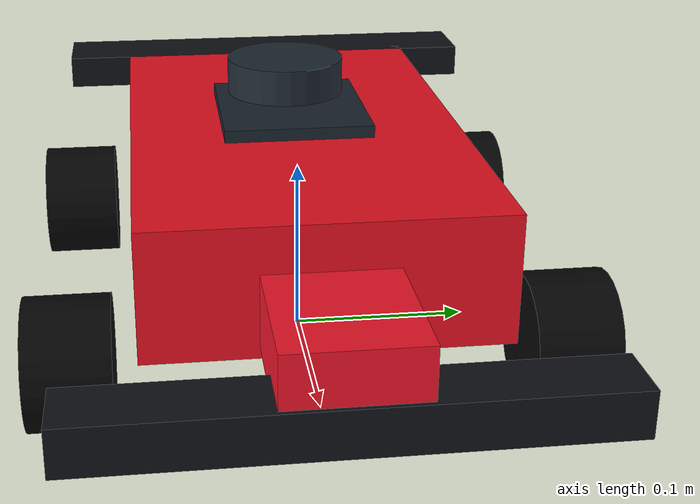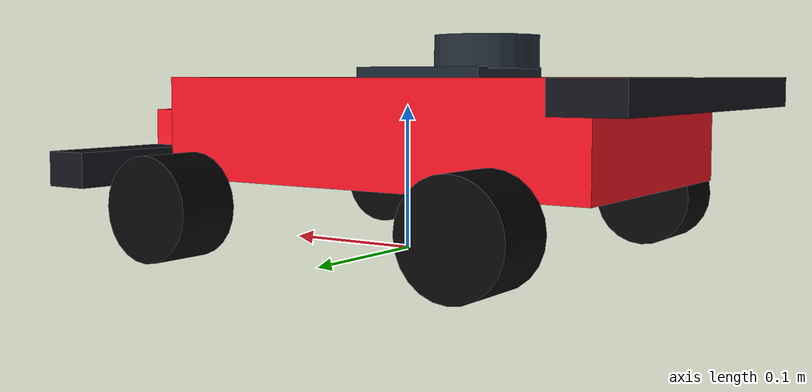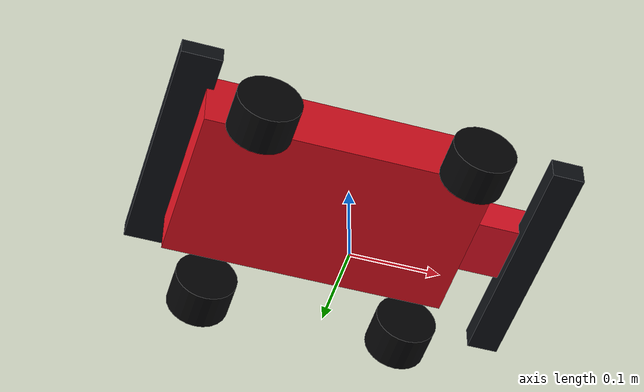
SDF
<?xml version='1.0' encoding='utf-8'?>
<sdf version="1.6">
  <!--Derived from nav2_minimal_tb3_sim/gz_waffle.sdf.xacro (Apache-2.0). Modified visual geometry only; see NOTICE.md and LICENSE.upstream.-->
  <model name="turtlebot3_waffle">
    <pose>0.0 0.0 0.0 0.0 0.0 0.0</pose>
    <link name="base_footprint" />
    <link name="base_link">
      <inertial>
        <pose>-0.064 0 0.048 0 0 0</pose>
        <inertia>
          <ixx>0.001</ixx>
          <ixy>0.000</ixy>
          <ixz>0.000</ixz>
          <iyy>0.001</iyy>
          <iyz>0.000</iyz>
          <izz>0.001</izz>
        </inertia>
        <mass>1.0</mass>
      </inertial>
      <collision name="base_collision">
        <pose>-0.064 0 0.048 0 0 0</pose>
        <geometry>
          <box>
            <size>0.265 0.265 0.089</size>
          </box>
        </geometry>
      </collision>
      <visual name="racing_body">
        <pose>-0.025 0 0.085 0 0 0</pose>
        <geometry>
          <box>
            <size>0.32 0.19 0.07</size>
          </box>
        </geometry>
        <material>
          <ambient>0.92 0.07 0.13 1</ambient>
          <diffuse>0.92 0.07 0.13 1</diffuse>
        </material>
      </visual>
      <visual name="nose">
        <pose>0.14 0 0.075 0 0 0</pose>
        <geometry>
          <box>
            <size>0.15 0.07 0.04</size>
          </box>
        </geometry>
        <material>
          <ambient>0.95 0.08 0.16 1</ambient>
          <diffuse>0.95 0.08 0.16 1</diffuse>
        </material>
      </visual>
      <visual name="front_wing">
        <pose>0.2 0 0.055 0 0 0</pose>
        <geometry>
          <box>
            <size>0.035 0.27 0.025</size>
          </box>
        </geometry>
        <material>
          <ambient>0.06 0.07 0.09 1</ambient>
          <diffuse>0.06 0.07 0.09 1</diffuse>
        </material>
      </visual>
      <visual name="rear_wing">
        <pose>-0.2 0 0.11 0 0 0</pose>
        <geometry>
          <box>
            <size>0.045 0.27 0.02</size>
          </box>
        </geometry>
        <material>
          <ambient>0.06 0.07 0.09 1</ambient>
          <diffuse>0.06 0.07 0.09 1</diffuse>
        </material>
      </visual>
      <visual name="cockpit">
        <pose>-0.035 0 0.107 0 0 0</pose>
        <geometry>
          <box>
            <size>0.095 0.085 0.04</size>
          </box>
        </geometry>
        <material>
          <ambient>0.1 0.14 0.18 1</ambient>
          <diffuse>0.1 0.14 0.18 1</diffuse>
        </material>
      </visual>
      <visual name="tyre_-0.13_-1">
        <pose>-0.13 -0.13 0.035 1.5707963267948966 0 0</pose>
        <geometry>
          <cylinder>
            <radius>0.035</radius>
            <length>0.045</length>
          </cylinder>
        </geometry>
        <material>
          <ambient>0.02 0.02 0.025 1</ambient>
          <diffuse>0.02 0.02 0.025 1</diffuse>
        </material>
      </visual>
      <visual name="tyre_-0.13_1">
        <pose>-0.13 0.13 0.035 1.5707963267948966 0 0</pose>
        <geometry>
          <cylinder>
            <radius>0.035</radius>
            <length>0.045</length>
          </cylinder>
        </geometry>
        <material>
          <ambient>0.02 0.02 0.025 1</ambient>
          <diffuse>0.02 0.02 0.025 1</diffuse>
        </material>
      </visual>
      <visual name="tyre_0.1_-1">
        <pose>0.1 -0.13 0.035 1.5707963267948966 0 0</pose>
        <geometry>
          <cylinder>
            <radius>0.035</radius>
            <length>0.045</length>
          </cylinder>
        </geometry>
        <material>
          <ambient>0.02 0.02 0.025 1</ambient>
          <diffuse>0.02 0.02 0.025 1</diffuse>
        </material>
      </visual>
      <visual name="tyre_0.1_1">
        <pose>0.1 0.13 0.035 1.5707963267948966 0 0</pose>
        <geometry>
          <cylinder>
            <radius>0.035</radius>
            <length>0.045</length>
          </cylinder>
        </geometry>
        <material>
          <ambient>0.02 0.02 0.025 1</ambient>
          <diffuse>0.02 0.02 0.025 1</diffuse>
        </material>
      </visual>
    </link>
    <link name="imu_link">
      <sensor name="tb3_imu" type="imu">
        <always_on>true</always_on>
        <update_rate>200</update_rate>
        <topic>/imu</topic>
        <gz_frame_id>imu_link</gz_frame_id>
        <imu>
          <angular_velocity>
            <x>
              <noise type="gaussian">
                <mean>0.0</mean>
                <stddev>2e-4</stddev>
              </noise>
            </x>
            <y>
              <noise type="gaussian">
                <mean>0.0</mean>
                <stddev>2e-4</stddev>
              </noise>
            </y>
            <z>
              <noise type="gaussian">
                <mean>0.0</mean>
                <stddev>2e-4</stddev>
              </noise>
            </z>
          </angular_velocity>
          <linear_acceleration>
            <x>
              <noise type="gaussian">
                <mean>0.0</mean>
                <stddev>1.7e-2</stddev>
              </noise>
            </x>
            <y>
              <noise type="gaussian">
                <mean>0.0</mean>
                <stddev>1.7e-2</stddev>
              </noise>
            </y>
            <z>
              <noise type="gaussian">
                <mean>0.0</mean>
                <stddev>1.7e-2</stddev>
              </noise>
            </z>
          </linear_acceleration>
        </imu>
      </sensor>
    </link>
    <link name="base_scan">
      <inertial>
        <pose>-0.064 0 0.121 0 0 0</pose>
        <inertia>
          <ixx>0.001</ixx>
          <ixy>0.000</ixy>
          <ixz>0.000</ixz>
          <iyy>0.001</iyy>
          <iyz>0.000</iyz>
          <izz>0.001</izz>
        </inertia>
        <mass>0.125</mass>
      </inertial>
      <collision name="lidar_sensor_collision">
        <pose>-0.052 0 0.111 0 0 0</pose>
        <geometry>
          <cylinder>
            <radius>0.0508</radius>
            <length>0.055</length>
          </cylinder>
        </geometry>
      </collision>
      <sensor name="hls_lfcd_lds" type="gpu_lidar">
        <always_on>true</always_on>
        <visualize>true</visualize>
        <pose>-0.064 0 0.15 0 0 0</pose>
        <update_rate>5</update_rate>
        <topic>/scan</topic>
        <gz_frame_id>base_scan</gz_frame_id>
        <ray>
          <scan>
            <horizontal>
              <samples>360</samples>
              <resolution>1.000000</resolution>
              <min_angle>0.000000</min_angle>
              <max_angle>6.280000</max_angle>
            </horizontal>
          </scan>
          <range>
            <min>0.00001</min>
            <max>20.0</max>
            <resolution>0.015000</resolution>
          </range>
          <noise>
            <type>gaussian</type>
            <mean>0.0</mean>
            <stddev>0.01</stddev>
          </noise>
        </ray>
      </sensor>
      <visual name="lidar">
        <pose>-0.064 0 0.137 0 0 0</pose>
        <geometry>
          <cylinder>
            <radius>0.035</radius>
            <length>0.022</length>
          </cylinder>
        </geometry>
        <material>
          <ambient>0.12 0.16 0.20 1</ambient>
          <diffuse>0.12 0.16 0.20 1</diffuse>
        </material>
      </visual>
    </link>
    <link name="wheel_left_link">
      <inertial>
        <pose>0.0 0.144 0.023 -1.57 0 0</pose>
        <inertia>
          <ixx>0.001</ixx>
          <ixy>0.000</ixy>
          <ixz>0.000</ixz>
          <iyy>0.001</iyy>
          <iyz>0.000</iyz>
          <izz>0.001</izz>
        </inertia>
        <mass>0.1</mass>
      </inertial>
      <collision name="wheel_left_collision">
        <pose>0.0 0.144 0.023 -1.57 0 0</pose>
        <geometry>
          <cylinder>
            <radius>0.033</radius>
            <length>0.018</length>
          </cylinder>
        </geometry>
        <surface>
          <friction>
            <ode>
              <mu>1</mu>
              <mu2>1</mu2>
              <slip1>0.035</slip1>
              <slip2>0</slip2>
              <fdir1>0 0 1</fdir1>
            </ode>
          </friction>
          <contact>
            <ode>
              <soft_cfm>0</soft_cfm>
              <soft_erp>0.2</soft_erp>
              <kp>1e+5</kp>
              <kd>1</kd>
              <max_vel>0.01</max_vel>
              <min_depth>0.001</min_depth>
            </ode>
          </contact>
        </surface>
      </collision>
    </link>
    <link name="wheel_right_link">
      <inertial>
        <pose>0.0 -0.144 0.023 -1.57 0 0</pose>
        <inertia>
          <ixx>0.001</ixx>
          <ixy>0.000</ixy>
          <ixz>0.000</ixz>
          <iyy>0.001</iyy>
          <iyz>0.000</iyz>
          <izz>0.001</izz>
        </inertia>
        <mass>0.1</mass>
      </inertial>
      <collision name="wheel_right_collision">
        <pose>0.0 -0.144 0.023 -1.57 0 0</pose>
        <geometry>
          <cylinder>
            <radius>0.033</radius>
            <length>0.018</length>
          </cylinder>
        </geometry>
        <surface>
          <friction>
            <ode>
              <mu>1</mu>
              <mu2>1</mu2>
              <slip1>0.035</slip1>
              <slip2>0</slip2>
              <fdir1>0 0 1</fdir1>
            </ode>
          </friction>
          <contact>
            <ode>
              <soft_cfm>0</soft_cfm>
              <soft_erp>0.2</soft_erp>
              <kp>1e+5</kp>
              <kd>1</kd>
              <max_vel>0.01</max_vel>
              <min_depth>0.001</min_depth>
            </ode>
          </contact>
        </surface>
      </collision>
    </link>
    <link name="caster_back_right_link">
      <pose>-0.177 -0.064 -0.004 0 0 0</pose>
      <inertial>
        <mass>0.001</mass>
        <inertia>
          <ixx>0.00001</ixx>
          <ixy>0.000</ixy>
          <ixz>0.000</ixz>
          <iyy>0.00001</iyy>
          <iyz>0.000</iyz>
          <izz>0.00001</izz>
        </inertia>
      </inertial>
      <collision name="collision">
        <geometry>
          <sphere>
            <radius>0.005000</radius>
          </sphere>
        </geometry>
        <surface>
          <contact>
            <ode>
              <soft_cfm>0</soft_cfm>
              <soft_erp>0.2</soft_erp>
              <kp>1e+5</kp>
              <kd>1</kd>
              <max_vel>0.01</max_vel>
              <min_depth>0.001</min_depth>
            </ode>
          </contact>
        </surface>
      </collision>
    </link>
    <link name="caster_back_left_link">
      <pose>-0.177 0.064 -0.004 0 0 0</pose>
      <inertial>
        <mass>0.001</mass>
        <inertia>
          <ixx>0.00001</ixx>
          <ixy>0.000</ixy>
          <ixz>0.000</ixz>
          <iyy>0.00001</iyy>
          <iyz>0.000</iyz>
          <izz>0.00001</izz>
        </inertia>
      </inertial>
      <collision name="collision">
        <geometry>
          <sphere>
            <radius>0.005000</radius>
          </sphere>
        </geometry>
        <surface>
          <contact>
            <ode>
              <soft_cfm>0</soft_cfm>
              <soft_erp>0.2</soft_erp>
              <kp>1e+5</kp>
              <kd>1</kd>
              <max_vel>0.01</max_vel>
              <min_depth>0.001</min_depth>
            </ode>
          </contact>
        </surface>
      </collision>
    </link>
    <link name="camera_link">
      <inertial>
        <pose>0.069 -0.047 0.107 0 0 0</pose>
        <inertia>
          <ixx>0.001</ixx>
          <ixy>0.000</ixy>
          <ixz>0.000</ixz>
          <iyy>0.001</iyy>
          <iyz>0.000</iyz>
          <izz>0.001</izz>
        </inertia>
        <mass>0.035</mass>
      </inertial>
      <collision name="collision">
        <pose>0 0.047 -0.005 0 0 0</pose>
        <geometry>
          <box>
            <size>0.008 0.130 0.022</size>
          </box>
        </geometry>
      </collision>
      <pose>0.069 -0.047 0.107 0 0 0</pose>
      <sensor name="intel_realsense_r200_depth" type="depth">
        <always_on>1</always_on>
        <update_rate>5</update_rate>
        <pose>0.064 -0.047 0.107 0 0 0</pose>
        <gz_frame_id>camera_depth_frame</gz_frame_id>
        <camera name="realsense_depth_camera">
          <horizontal_fov>1.047</horizontal_fov>
          <image>
            <width>320</width>
            <height>240</height>
          </image>
          <lens>
            <projection>
              <tx>19.4</tx>
            </projection>
          </lens>
          <depth_camera>
            <clip>
              <near>0.001</near>
              <far>5.0</far>
            </clip>
          </depth_camera>
        </camera>
      </sensor>
    </link>
    <joint name="base_joint" type="fixed">
      <parent>base_footprint</parent>
      <child>base_link</child>
      <pose>0.0 0.0 0.010 0 0 0</pose>
    </joint>
    <joint name="wheel_left_joint" type="revolute">
      <parent>base_link</parent>
      <child>wheel_left_link</child>
      <pose>0.0 0.144 0.023 -1.57 0 0</pose>
      <axis>
        <xyz>0 0 1</xyz>
      </axis>
    </joint>
    <joint name="wheel_right_joint" type="revolute">
      <parent>base_link</parent>
      <child>wheel_right_link</child>
      <pose>0.0 -0.144 0.023 -1.57 0 0</pose>
      <axis>
        <xyz>0 0 1</xyz>
      </axis>
    </joint>
    <joint name="caster_back_right_joint" type="ball">
      <parent>base_link</parent>
      <child>caster_back_right_link</child>
    </joint>
    <joint name="caster_back_left_joint" type="ball">
      <parent>base_link</parent>
      <child>caster_back_left_link</child>
    </joint>
    <joint name="lidar_joint" type="fixed">
      <parent>base_link</parent>
      <child>base_scan</child>
      <pose>-0.064 0 0.121 0 0 0</pose>
      <axis>
        <xyz>0 0 1</xyz>
      </axis>
    </joint>
    <joint name="camera_joint" type="fixed">
      <parent>base_link</parent>
      <child>camera_link</child>
      <pose>0.064 -0.065 0.094 0 0 0</pose>
      <axis>
        <xyz>0 0 1</xyz>
      </axis>
    </joint>
    <plugin filename="gz-sim-diff-drive-system" name="gz::sim::systems::DiffDrive">
      <left_joint>wheel_left_joint</left_joint>
      <right_joint>wheel_right_joint</right_joint>
      <wheel_separation>0.287</wheel_separation>
      <wheel_radius>0.033</wheel_radius>
      <max_linear_acceleration>1</max_linear_acceleration>
      <min_linear_acceleration>-1</min_linear_acceleration>
      <max_angular_acceleration>2</max_angular_acceleration>
      <min_angular_acceleration>-2</min_angular_acceleration>
      <max_linear_velocity>0.46</max_linear_velocity>
      <min_linear_velocity>-0.46</min_linear_velocity>
      <max_angular_velocity>1.9</max_angular_velocity>
      <min_angular_velocity>-1.9</min_angular_velocity>
      <topic>/cmd_vel</topic>
      <odom_topic>/odom</odom_topic>
      <tf_topic>/tf</tf_topic>
      <frame_id>odom</frame_id>
      <child_frame_id>base_footprint</child_frame_id>
      <odom_publish_frequency>30</odom_publish_frequency>
    </plugin>
    <plugin filename="gz-sim-joint-state-publisher-system" name="gz::sim::systems::JointStatePublisher">
      <joint_name>wheel_left_joint</joint_name>
      <joint_name>wheel_right_joint</joint_name>
      <topic>/joint_states</topic>
      <update_rate>30</update_rate>
    </plugin>
  </model>
</sdf>
